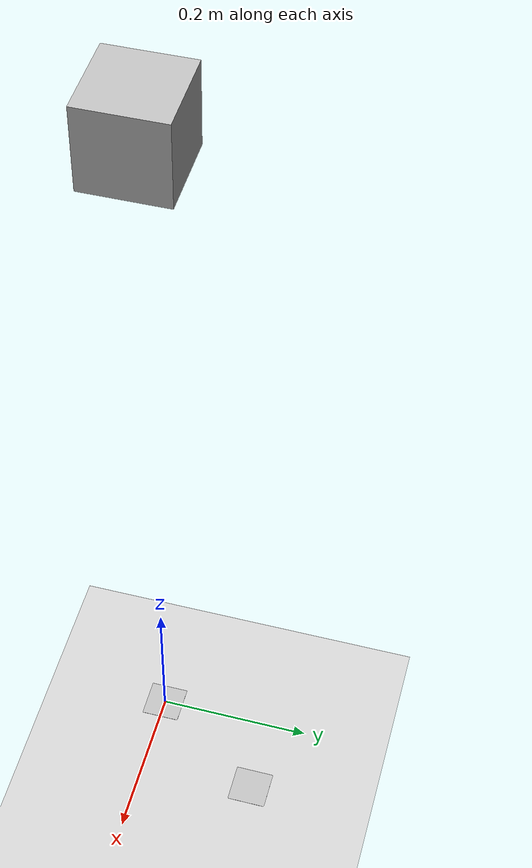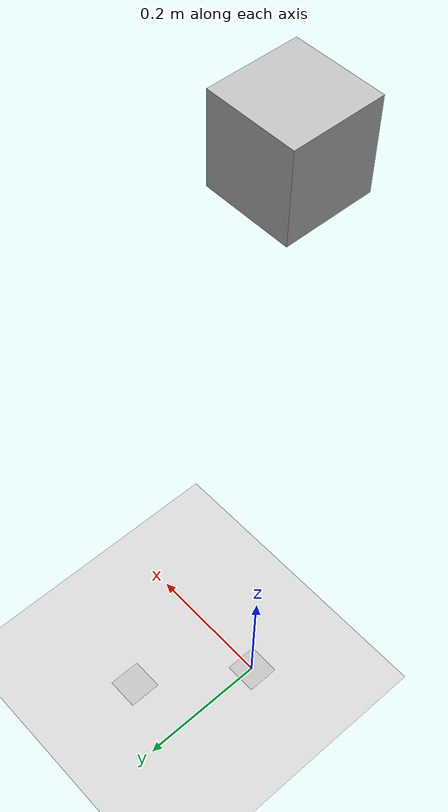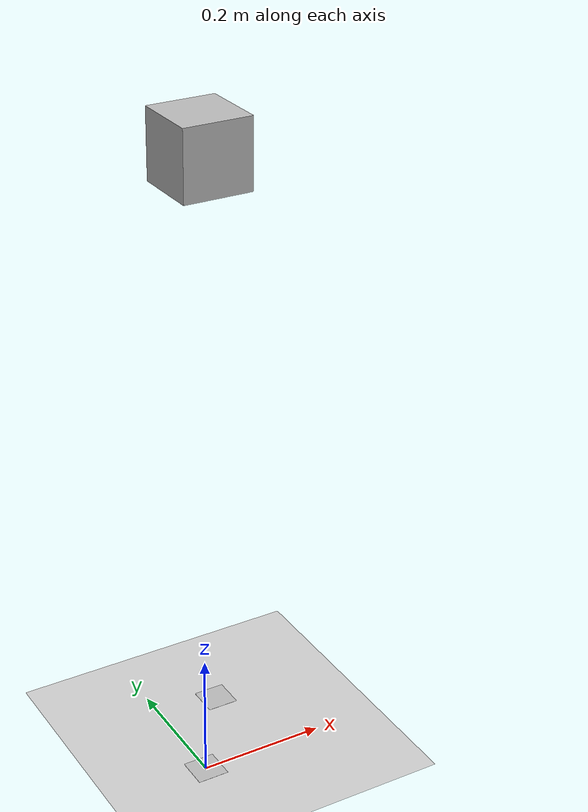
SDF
<sdf version="1.7">
 <world name="default">
  <light name="sun" type="directional">
   <cast_shadows>0</cast_shadows>
   <pose>0 0 10 0 -0 0</pose>
   <diffuse>0.8 0.8 0.8 1</diffuse>
   <specular>0.2 0.2 0.2 1</specular>
   <attenuation>
    <range>1000</range>
    <constant>0.9</constant>
    <linear>0.01</linear>
    <quadratic>0.001</quadratic>
   </attenuation>
   <direction>-0.5 0.1 -0.9</direction>
   <spot><inner_angle>0</inner_angle><outer_angle>0</outer_angle><falloff>0</falloff></spot>
  </light>
  <model name="ground_plane">
   <static>1</static>
   <link name="link">
    <collision name="collision">
     <geometry><plane><normal>0 0 1</normal><size>100 100</size></plane></geometry>
     <surface>
      <contact><collide_bitmask>65535</collide_bitmask></contact>
      <friction><ode><mu>100</mu><mu2>50</mu2></ode></friction>
     </surface>
    </collision>
    <visual name="visual">
     <cast_shadows>0</cast_shadows>
     <geometry><plane><normal>0 0 1</normal><size>100 100</size></plane></geometry>
     <material>
      <script><uri>file://media/materials/scripts/gazebo.material</uri><name>Gazebo/Grey</name></script>
     </material>
    </visual>
   </link>
  </model>
  <gravity>0 0 -9.8</gravity>
  <magnetic_field>6e-06 2.3e-05 -4.2e-05</magnetic_field>
  <atmosphere type="adiabatic"/>
  <physics type="ode">
   <max_step_size>0.001</max_step_size>
   <real_time_factor>1</real_time_factor>
   <real_time_update_rate>1000</real_time_update_rate>
  </physics>
  <scene><ambient>0.4 0.4 0.4 1</ambient><background>0.7 0.7 0.7 1</background><shadows>1</shadows></scene>
  <spherical_coordinates>
   <surface_model>EARTH_WGS84</surface_model>
   <latitude_deg>0</latitude_deg>
   <longitude_deg>0</longitude_deg>
   <elevation>0</elevation>
   <heading_deg>0</heading_deg>
  </spherical_coordinates>
  <model name="distorted_camera">
   <pose>0 0 1 0 1.57079 0</pose>
   <static>1</static>
   <link name="camera_link">
    <inertial>
     <mass>0.1</mass>
     <inertia>
      <ixx>0.000166667</ixx>
      <iyy>0.000166667</iyy>
      <izz>0.000166667</izz>
      <ixy>0</ixy>
      <ixz>0</ixz>
      <iyz>0</iyz>
     </inertia>
    </inertial>
    <collision name="collision"><geometry><box><size>0.1 0.1 0.1</size></box></geometry></collision>
    <visual name="visual"><geometry><box><size>0.1 0.1 0.1</size></box></geometry></visual>
    <sensor name="pi_camera" type="camera">
     <camera>
      <horizontal_fov>0.4887</horizontal_fov>
      <image><width>1456</width><height>1088</height></image>
      <clip><near>0.1</near><far>100</far></clip>
      <noise><type>gaussian</type><mean>0</mean><stddev>0.007</stddev></noise>
     </camera>
     <plugin name="camera_controller" filename="libgazebo_ros_camera.so">
      <alwaysOn>1</alwaysOn>
      <updateRate>60.0</updateRate>
      <cameraName>pi_camera</cameraName>
      <imageTopicName>image_raw</imageTopicName>
      <cameraInfoTopicName>camera_info</cameraInfoTopicName>
      <frameName>camera_link</frameName>
      <hackBaseline>0.07</hackBaseline>
      <distortionK1>0.0</distortionK1>
      <distortionK2>0.0</distortionK2>
      <distortionK3>0.0</distortionK3>
      <distortionT1>0.0</distortionT1>
      <distortionT2>0.0</distortionT2>
     </plugin>
     <always_on>1</always_on>
     <update_rate>60</update_rate>
     <visualize>1</visualize>
    </sensor>
   </link>
  </model>
  <model name="aruco_marker_1">
   <link name="link">
    <inertial>
     <mass>0.001</mass>
     <inertia>
      <ixx>3.75e-06</ixx>
      <ixy>0</ixy>
      <ixz>0</ixz>
      <iyy>1.875e-06</iyy>
      <iyz>0</iyz>
      <izz>1.875e-06</izz>
     </inertia>
    </inertial>
    <visual name="front_visual">
     <pose>5e-05 0 0 0 -0 0</pose>
     <geometry><box><size>0.0001 0.05 0.05</size></box></geometry>
     <material>
      <script>
       <uri>model://aruco_marker_1/materials/scripts</uri>
       <uri>model://aruco_marker_1/materials/textures</uri>
       <name>marker_1</name>
       <scale>1 1 1</scale>
      </script>
     </material>
    </visual>
    <visual name="rear_visual">
     <pose>-5e-05 0 0 0 -0 0</pose>
     <geometry><box><size>0.0001 0.05 0.05</size></box></geometry>
    </visual>
    <collision name="collision"><geometry><box><size>0.0001 0.05 0.05</size></box></geometry></collision>
   </link>
   <pose>0.1 0.15 5e-05 3.14159 -1.57079 3.14159</pose>
  </model>
  <model name="aruco_marker_0">
   <link name="link">
    <inertial>
     <mass>0.001</mass>
     <inertia>
      <ixx>3.75e-06</ixx>
      <ixy>0</ixy>
      <ixz>0</ixz>
      <iyy>1.875e-06</iyy>
      <iyz>0</iyz>
      <izz>1.875e-06</izz>
     </inertia>
    </inertial>
    <visual name="front_visual">
     <pose>5e-05 0 0 0 -0 0</pose>
     <geometry><box><size>0.0001 0.05 0.05</size></box></geometry>
     <material>
      <script>
       <uri>model://aruco_marker_0/materials/scripts</uri>
       <uri>model://aruco_marker_0/materials/textures</uri>
       <name>marker_0</name>
       <scale>1 1 1</scale>
      </script>
     </material>
    </visual>
    <visual name="rear_visual">
     <pose>-5e-05 0 0 0 -0 0</pose>
     <geometry><box><size>0.0001 0.05 0.05</size></box></geometry>
    </visual>
    <collision name="collision"><geometry><box><size>0.0001 0.05 0.05</size></box></geometry></collision>
   </link>
   <pose>-0 0 5e-05 3.14159 -1.57079 3.14159</pose>
  </model>
 </world>
</sdf>
